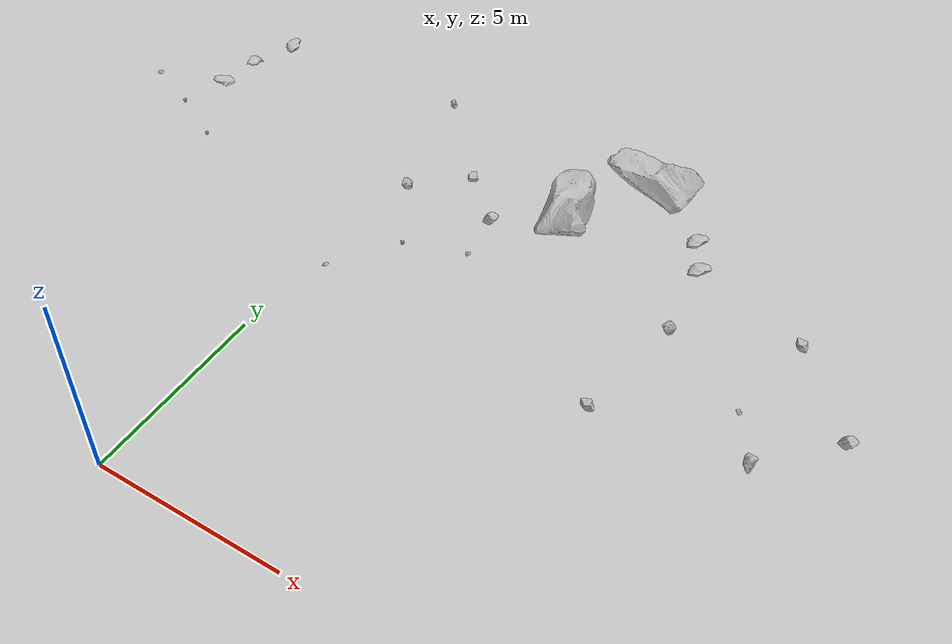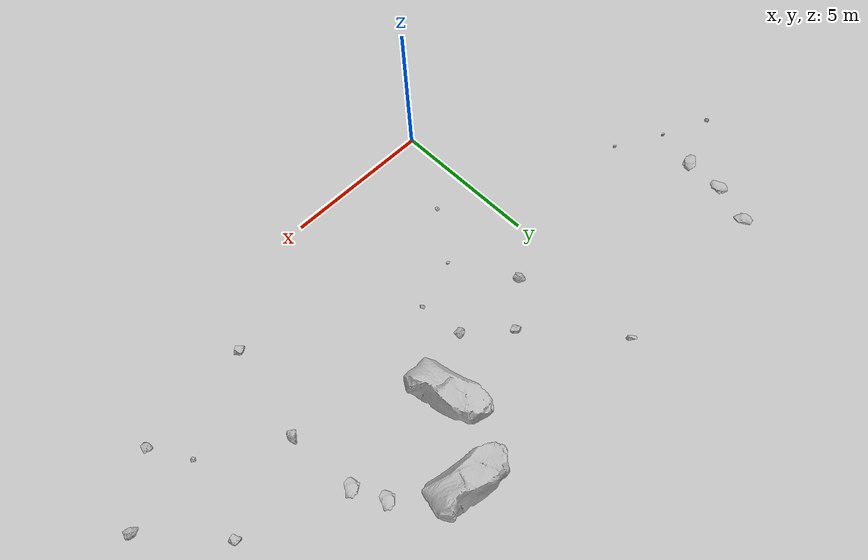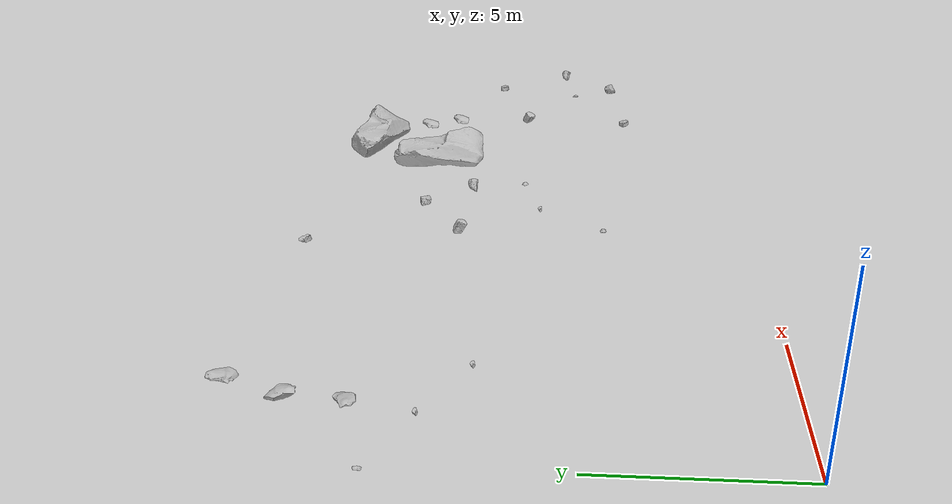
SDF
<sdf version="1.7">
 <world name="marsyard">
  <model name="Rock_2">
   <static>true</static>
   <pose>2.3923 10.8306 4.0000 0.0000 0.0000 2.2369</pose>
   <link name="link">
    <visual name="visual">
     <geometry><mesh><uri>package://rock_generator/rocks_ws/rock_6/meshes/rock_6.stl</uri></mesh></geometry>
    </visual>
    <collision name="collision">
     <geometry><mesh><uri>package://rock_generator/rocks_ws/rock_6/meshes/rock_6.stl</uri></mesh></geometry>
    </collision>
   </link>
  </model>
  <model name="Rock_7">
   <static>true</static>
   <pose>-4.5713 8.0112 4.0000 0.0000 0.0000 1.6687</pose>
   <link name="link">
    <visual name="visual">
     <geometry><mesh><uri>package://rock_generator/rocks_ws/rock_5/meshes/rock_5.stl</uri></mesh></geometry>
    </visual>
    <collision name="collision">
     <geometry><mesh><uri>package://rock_generator/rocks_ws/rock_5/meshes/rock_5.stl</uri></mesh></geometry>
    </collision>
   </link>
  </model>
  <model name="Rock_19">
   <static>true</static>
   <pose>11.9268 5.5314 4.0000 0.0000 0.0000 2.3666</pose>
   <link name="link">
    <visual name="visual">
     <geometry><mesh><uri>package://rock_generator/rocks_ws/rock_5/meshes/rock_5.stl</uri></mesh></geometry>
    </visual>
    <collision name="collision">
     <geometry><mesh><uri>package://rock_generator/rocks_ws/rock_5/meshes/rock_5.stl</uri></mesh></geometry>
    </collision>
   </link>
  </model>
  <model name="Rock_25">
   <static>true</static>
   <pose>3.1079 4.6034 4.0000 0.0000 0.0000 -1.6580</pose>
   <link name="link">
    <visual name="visual">
     <geometry><mesh><uri>package://rock_generator/rocks_ws/rock_5/meshes/rock_5.stl</uri></mesh></geometry>
    </visual>
    <collision name="collision">
     <geometry><mesh><uri>package://rock_generator/rocks_ws/rock_5/meshes/rock_5.stl</uri></mesh></geometry>
    </collision>
   </link>
  </model>
  <model name="Rock_28">
   <static>true</static>
   <pose>-1.9429 6.7096 4.0000 0.0000 0.0000 -0.5548</pose>
   <link name="link">
    <visual name="visual">
     <geometry><mesh><uri>package://rock_generator/rocks_ws/rock_9/meshes/rock_9.stl</uri></mesh></geometry>
    </visual>
    <collision name="collision">
     <geometry><mesh><uri>package://rock_generator/rocks_ws/rock_9/meshes/rock_9.stl</uri></mesh></geometry>
    </collision>
   </link>
  </model>
  <model name="Rock_29">
   <static>true</static>
   <pose>-3.2521 7.4289 4.0000 0.0000 0.0000 -0.2689</pose>
   <link name="link">
    <visual name="visual">
     <geometry><mesh><uri>package://rock_generator/rocks_ws/rock_9/meshes/rock_9.stl</uri></mesh></geometry>
    </visual>
    <collision name="collision">
     <geometry><mesh><uri>package://rock_generator/rocks_ws/rock_9/meshes/rock_9.stl</uri></mesh></geometry>
    </collision>
   </link>
  </model>
  <model name="Rock_33">
   <static>true</static>
   <pose>6.6672 8.7028 4.0000 0.0000 0.0000 -1.2016</pose>
   <link name="link">
    <visual name="visual">
     <geometry><mesh><uri>package://rock_generator/rocks_ws/rock_4/meshes/rock_4.stl</uri></mesh></geometry>
    </visual>
    <collision name="collision">
     <geometry><mesh><uri>package://rock_generator/rocks_ws/rock_4/meshes/rock_4.stl</uri></mesh></geometry>
    </collision>
   </link>
  </model>
  <model name="Rock_38">
   <static>true</static>
   <pose>12.6144 4.5117 4.0000 0.0000 0.0000 1.3940</pose>
   <link name="link">
    <visual name="visual">
     <geometry><mesh><uri>package://rock_generator/rocks_ws/rock_3/meshes/rock_3.stl</uri></mesh></geometry>
    </visual>
    <collision name="collision">
     <geometry><mesh><uri>package://rock_generator/rocks_ws/rock_3/meshes/rock_3.stl</uri></mesh></geometry>
    </collision>
   </link>
  </model>
  <model name="Rock_39">
   <static>true</static>
   <pose>13.8451 5.8166 4.0000 0.0000 0.0000 -0.3233</pose>
   <link name="link">
    <visual name="visual">
     <geometry><mesh><uri>package://rock_generator/rocks_ws/rock_3/meshes/rock_3.stl</uri></mesh></geometry>
    </visual>
    <collision name="collision">
     <geometry><mesh><uri>package://rock_generator/rocks_ws/rock_3/meshes/rock_3.stl</uri></mesh></geometry>
    </collision>
   </link>
  </model>
  <model name="Rock_40">
   <static>true</static>
   <pose>12.3230 7.6785 4.0000 0.0000 0.0000 0.9377</pose>
   <link name="link">
    <visual name="visual">
     <geometry><mesh><uri>package://rock_generator/rocks_ws/rock_1/meshes/rock_1.stl</uri></mesh></geometry>
    </visual>
    <collision name="collision">
     <geometry><mesh><uri>package://rock_generator/rocks_ws/rock_1/meshes/rock_1.stl</uri></mesh></geometry>
    </collision>
   </link>
  </model>
  <model name="Rock_43">
   <static>true</static>
   <pose>9.4761 4.1177 4.0000 0.0000 0.0000 1.3811</pose>
   <link name="link">
    <visual name="visual">
     <geometry><mesh><uri>package://rock_generator/rocks_ws/rock_1/meshes/rock_1.stl</uri></mesh></geometry>
    </visual>
    <collision name="collision">
     <geometry><mesh><uri>package://rock_generator/rocks_ws/rock_1/meshes/rock_1.stl</uri></mesh></geometry>
    </collision>
   </link>
  </model>
  <model name="Rock_52">
   <static>true</static>
   <pose>9.8963 6.8122 4.0000 0.0000 0.0000 -2.2653</pose>
   <link name="link">
    <visual name="visual">
     <geometry><mesh><uri>package://rock_generator/rocks_ws/rock_3/meshes/rock_3.stl</uri></mesh></geometry>
    </visual>
    <collision name="collision">
     <geometry><mesh><uri>package://rock_generator/rocks_ws/rock_3/meshes/rock_3.stl</uri></mesh></geometry>
    </collision>
   </link>
  </model>
  <model name="Rock_57">
   <static>true</static>
   <pose>3.0393 7.6488 4.0000 0.0000 0.0000 -1.2809</pose>
   <link name="link">
    <visual name="visual">
     <geometry><mesh><uri>package://rock_generator/rocks_ws/rock_3/meshes/rock_3.stl</uri></mesh></geometry>
    </visual>
    <collision name="collision">
     <geometry><mesh><uri>package://rock_generator/rocks_ws/rock_3/meshes/rock_3.stl</uri></mesh></geometry>
    </collision>
   </link>
  </model>
  <model name="Rock_60">
   <static>true</static>
   <pose>-2.4964 10.7632 4.0000 0.0000 0.0000 -1.4250</pose>
   <link name="link">
    <visual name="visual">
     <geometry><mesh><uri>package://rock_generator/rocks_ws/rock_8/meshes/rock_8.stl</uri></mesh></geometry>
    </visual>
    <collision name="collision">
     <geometry><mesh><uri>package://rock_generator/rocks_ws/rock_8/meshes/rock_8.stl</uri></mesh></geometry>
    </collision>
   </link>
  </model>
  <model name="Rock_63">
   <static>true</static>
   <pose>7.8109 10.4888 4.0000 0.0000 0.0000 -0.0224</pose>
   <link name="link">
    <visual name="visual">
     <geometry><mesh><uri>package://rock_generator/rocks_ws/rock_4/meshes/rock_4.stl</uri></mesh></geometry>
    </visual>
    <collision name="collision">
     <geometry><mesh><uri>package://rock_generator/rocks_ws/rock_4/meshes/rock_4.stl</uri></mesh></geometry>
    </collision>
   </link>
  </model>
  <model name="Rock_66">
   <static>true</static>
   <pose>5.3122 7.5853 4.0000 0.0000 0.0000 0.0024</pose>
   <link name="link">
    <visual name="visual">
     <geometry><mesh><uri>package://rock_generator/rocks_ws/rock_3/meshes/rock_3.stl</uri></mesh></geometry>
    </visual>
    <collision name="collision">
     <geometry><mesh><uri>package://rock_generator/rocks_ws/rock_3/meshes/rock_3.stl</uri></mesh></geometry>
    </collision>
   </link>
  </model>
  <model name="Rock_72">
   <static>true</static>
   <pose>9.3841 9.4283 4.0000 0.0000 0.0000 -2.2930</pose>
   <link name="link">
    <visual name="visual">
     <geometry><mesh><uri>package://rock_generator/rocks_ws/rock_8/meshes/rock_8.stl</uri></mesh></geometry>
    </visual>
    <collision name="collision">
     <geometry><mesh><uri>package://rock_generator/rocks_ws/rock_8/meshes/rock_8.stl</uri></mesh></geometry>
    </collision>
   </link>
  </model>
  <model name="Rock_73">
   <static>true</static>
   <pose>-2.9901 8.5766 4.0000 0.0000 0.0000 0.2992</pose>
   <link name="link">
    <visual name="visual">
     <geometry><mesh><uri>package://rock_generator/rocks_ws/rock_8/meshes/rock_8.stl</uri></mesh></geometry>
    </visual>
    <collision name="collision">
     <geometry><mesh><uri>package://rock_generator/rocks_ws/rock_8/meshes/rock_8.stl</uri></mesh></geometry>
    </collision>
   </link>
  </model>
  <model name="Rock_79">
   <static>true</static>
   <pose>4.1000 6.0223 4.0000 0.0000 0.0000 -0.6844</pose>
   <link name="link">
    <visual name="visual">
     <geometry><mesh><uri>package://rock_generator/rocks_ws/rock_9/meshes/rock_9.stl</uri></mesh></geometry>
    </visual>
    <collision name="collision">
     <geometry><mesh><uri>package://rock_generator/rocks_ws/rock_9/meshes/rock_9.stl</uri></mesh></geometry>
    </collision>
   </link>
  </model>
  <model name="Rock_83">
   <static>true</static>
   <pose>-2.8667 9.6712 4.0000 0.0000 0.0000 1.6901</pose>
   <link name="link">
    <visual name="visual">
     <geometry><mesh><uri>package://rock_generator/rocks_ws/rock_8/meshes/rock_8.stl</uri></mesh></geometry>
    </visual>
    <collision name="collision">
     <geometry><mesh><uri>package://rock_generator/rocks_ws/rock_8/meshes/rock_8.stl</uri></mesh></geometry>
    </collision>
   </link>
  </model>
  <model name="Rock_106">
   <static>true</static>
   <pose>9.7732 8.6407 4.0000 0.0000 0.0000 -2.4624</pose>
   <link name="link">
    <visual name="visual">
     <geometry><mesh><uri>package://rock_generator/rocks_ws/rock_8/meshes/rock_8.stl</uri></mesh></geometry>
    </visual>
    <collision name="collision">
     <geometry><mesh><uri>package://rock_generator/rocks_ws/rock_8/meshes/rock_8.stl</uri></mesh></geometry>
    </collision>
   </link>
  </model>
  <model name="Rock_119">
   <static>true</static>
   <pose>5.4600 6.4718 4.0000 0.0000 0.0000 -0.9735</pose>
   <link name="link">
    <visual name="visual">
     <geometry><mesh><uri>package://rock_generator/rocks_ws/rock_5/meshes/rock_5.stl</uri></mesh></geometry>
    </visual>
    <collision name="collision">
     <geometry><mesh><uri>package://rock_generator/rocks_ws/rock_5/meshes/rock_5.stl</uri></mesh></geometry>
    </collision>
   </link>
  </model>
  <model name="Rock_121">
   <static>true</static>
   <pose>4.2976 8.6281 4.0000 0.0000 0.0000 -1.9288</pose>
   <link name="link">
    <visual name="visual">
     <geometry><mesh><uri>package://rock_generator/rocks_ws/rock_1/meshes/rock_1.stl</uri></mesh></geometry>
    </visual>
    <collision name="collision">
     <geometry><mesh><uri>package://rock_generator/rocks_ws/rock_1/meshes/rock_1.stl</uri></mesh></geometry>
    </collision>
   </link>
  </model>
 </world>
</sdf>
